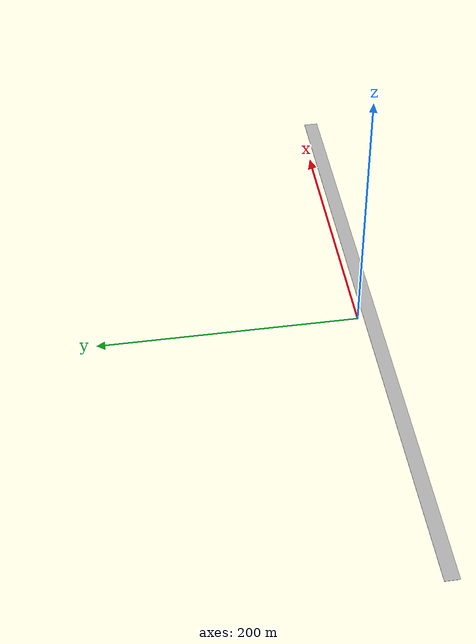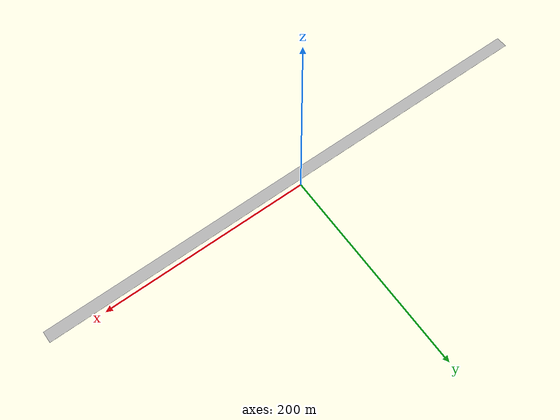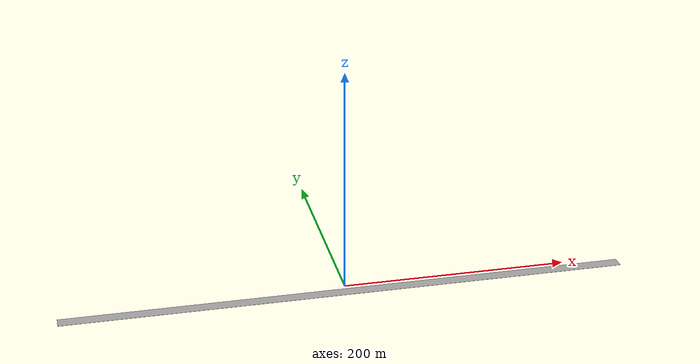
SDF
<?xml version="1.0" ?>
<sdf version="1.4">
  <model name="(DS) Straight Road - 500m">
    <static>true</static>
    <link name="link">
      <inertial>
        <pose>0 0 0 0 0 0</pose>
        <mass>1</mass>
        <inertia>
          <ixx>1</ixx>
          <iyy>1</iyy>
          <izz>1</izz>
          <ixy>0</ixy>
          <ixz>0</ixz>
        </inertia>
      </inertial>
      <collision name="collision">
        <geometry>
          <mesh>
            <uri>model://ds_straight_road_500m/meshes/straight_road_500m.dae</uri>
          </mesh>
        </geometry>
      </collision>

      <visual name="visual">
        <geometry>
          <mesh>
            <uri>model://ds_straight_road_500m/meshes/straight_road_500m.dae</uri>
          </mesh>
        </geometry>
      </visual>
    </link>
  </model>
</sdf>
